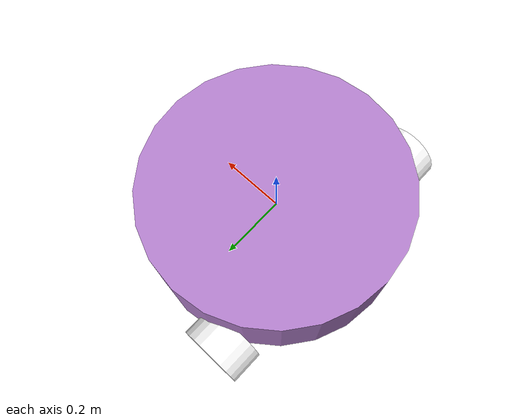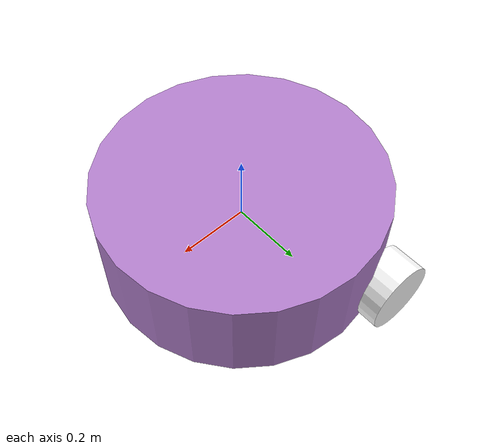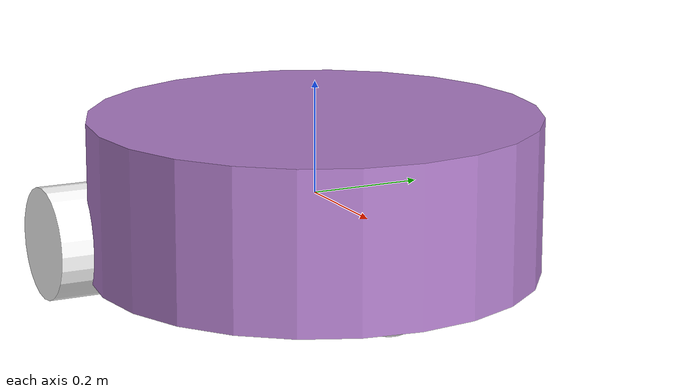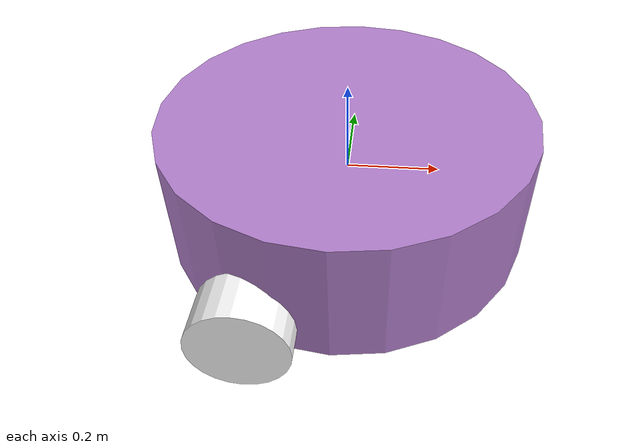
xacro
<?xml version="1.0"?>

<robot name="ihategazebo" xmlns:xacro="http://ros.org/wiki/xacro">
  <!-- Вот эта хрень нужна для подключения внутрь робота файла с описаниями для газебры -->
  <xacro:include filename="robot.gazebo.xacro" />

  <!-- Числовые константы (просто упрощаем себе жизнь) -->
  <xacro:property name="base_width" value="0.40"/>
  <xacro:property name="base_length" value="0.28"/>

  <xacro:property name="wheel_radius" value="0.10"/>
  <xacro:property name="wheel_width" value="0.10"/>
  <xacro:property name="wheel_ygap" value="0.20"/>
  <xacro:property name="wheel_zoff" value="0.08"/>
  <xacro:property name="wheel_xoff" value="0.16"/>

  <xacro:property name="caster_xoff" value="0.28"/>

  <xacro:property name="test_maxwidth" value="2.10"/>
  <xacro:property name="test_maxheight" value="2.50"/>

  <!-- Здесь описываем "материалы" (из какого цвета будут детаели) -->
  <material name="slate">
    <color rgba="0.7 0.5 0.8 1"/>
  </material>
  <material name="white">
    <color rgba="1.0 1.0 1.0 1"/>
  </material>
  <material name="red">
    <color rgba="0.8 0 0 0.5"/>
  </material>

  <!-- Задаём макросы xacro -->
  <xacro:macro name="box_inertia" params="m w h d">
    <inertial>
      <origin xyz="0 0 0" rpy="${pi/2} 0 ${pi/2}"/>
      <mass value="${m}"/>
      <inertia ixx="${(m/12) * (h*h + d*d)}" ixy="0.0" ixz="0.0" iyy="${(m/12) * (w*w + d*d)}" iyz="0.0" izz="${(m/12) * (w*w + h*h)}"/>
    </inertial>
  </xacro:macro>

  <xacro:macro name="cylinder_inertia" params="m r h">
    <inertial>
      <origin xyz="0 0 0" rpy="${pi/2} 0 0" />
      <mass value="${m}"/>
      <inertia ixx="${(m/12) * (3*r*r + h*h)}" ixy = "0" ixz = "0" iyy="${(m/12) * (3*r*r + h*h)}" iyz = "0" izz="${(m/2) * (r*r)}"/>
    </inertial>
  </xacro:macro>

  <xacro:macro name="sphere_inertia" params="m r">
    <inertial>
      <mass value="${m}"/>
      <inertia ixx="${(2/5) * m * (r*r)}" ixy="0.0" ixz="0.0" iyy="${(2/5) * m * (r*r)}" iyz="0.0" izz="${(2/5) * m * (r*r)}"/>
    </inertial>
  </xacro:macro>

  <!-- Базовая фигура, к ней должно крепиться всё остальное -->
  <link name="base_link">
    <visual>
      <geometry>
        <cylinder length="${base_length}" radius="${base_width}"/>
      </geometry>
      <material name="slate" />
    </visual>

    <collision>
      <geometry>
        <cylinder length="${base_length}" radius="${base_width}"/>
      </geometry>
    </collision>

    <xacro:cylinder_inertia m="15" r="${base_width}" h="${base_length}"/>
  </link>

  <!-- Колёса, задаются сразу несколько колёс через макрос -->
  <xacro:macro name="wheel" params="prefix x_reflect y_reflect">
    <link name="${prefix}_link">
      <visual>
        <origin xyz="0 0 0" rpy="${pi/2} 0 0"/>
        <geometry>
            <cylinder radius="${wheel_radius}" length="${wheel_width}"/>
        </geometry>
        <material name="white" />
      </visual>

      <collision>
        <origin xyz="0 0 0" rpy="${pi/2} 0 0"/>
        <geometry>
          <cylinder radius="${wheel_radius}" length="${wheel_width}"/>
        </geometry>
      </collision>

      <xacro:cylinder_inertia m="0.5" r="${wheel_radius}" h="${wheel_width}"/>
    </link>

    <joint name="${prefix}_joint" type="continuous">
      <parent link="base_link"/>
      <child link="${prefix}_link"/>
      <origin xyz="${x_reflect*wheel_xoff} ${y_reflect*(base_width/2+wheel_ygap)} ${-wheel_zoff}" rpy="0 0 0"/>
      <axis xyz="0 1 0"/>
    </joint>
  </xacro:macro>

  <xacro:wheel prefix="wheel_left" x_reflect="-1" y_reflect="1" />
  <xacro:wheel prefix="wheel_right" x_reflect="-1" y_reflect="-1" />

  <!-- Сфера спереди снизу, называется кастер -->
  <link name="caster">
    <visual>
      <geometry>
        <sphere radius="${(wheel_radius+wheel_zoff-(base_width/4))}"/>
      </geometry>
      <material name="white" />
    </visual>

    <collision>
      <origin xyz="0 0 0" rpy="0 0 0"/>
      <geometry>
        <sphere radius="${(wheel_radius+wheel_zoff-(base_width/4))}"/>
      </geometry>
    </collision>

    <xacro:sphere_inertia m="0.5" r="${(wheel_radius+wheel_zoff-(base_width/4))}"/>
  </link>

  <joint name="caster_joint" type="fixed">
    <parent link="base_link"/>
    <child link="caster"/>
    <origin xyz="${caster_xoff} 0.0 ${-(base_width/4)}" rpy="0 0 0"/>
  </joint>
</robot>
